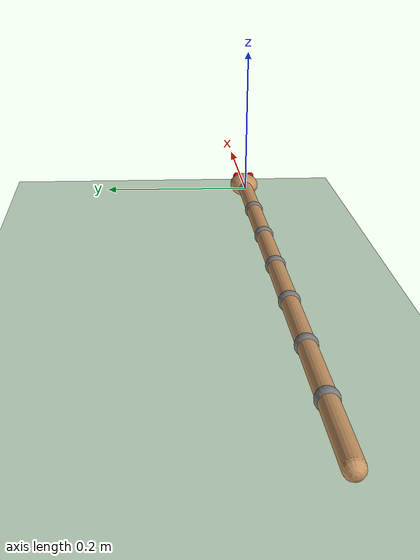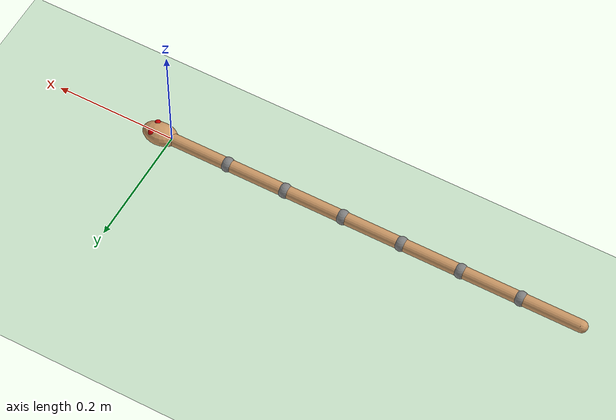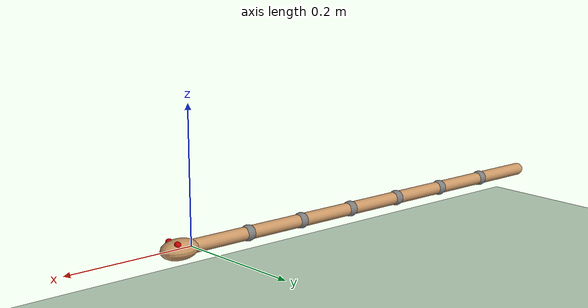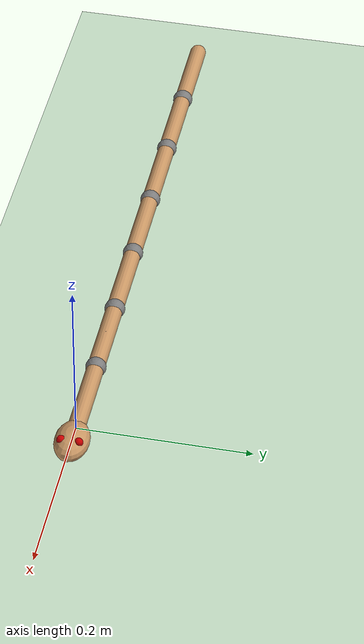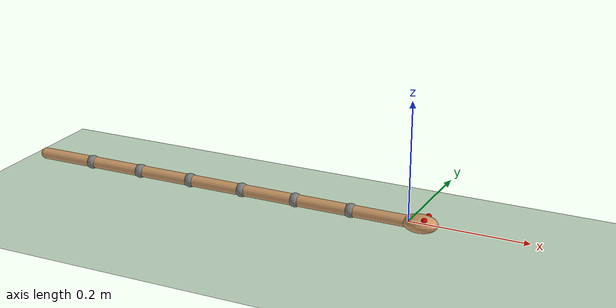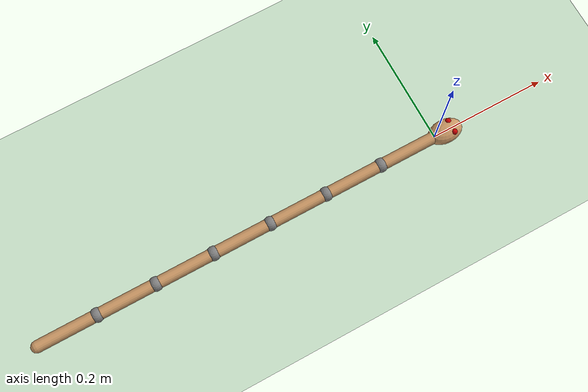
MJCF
<mujoco model="swimmer_position">
    <compiler angle="degree" coordinate="local" inertiafromgeom="true"/>
    <!--    water   -->
    <option collision="predefined" density="1000" timestep="0.01" viscosity="0.0009"/>
    <!--    oil                                                 absolute/dynamic   -->
    <!--    ethanol   -->
    <visual>
        <quality shadowsize="0"/>
    </visual>
    <default>
        <geom conaffinity="1" condim="1" contype="1" material="geom" rgba="0.8 0.6 .4 1"/>
        <default class="mid">
            <site pos="-0.05 0 0" size="0.01"/>
        </default>
        <default class="joint_mark">
            <site pos="0 0 0" size="0.012"/>
        </default>
        <default class="j">
            <joint axis="0 0 1" limited="true" pos="0 0 0" range="-90 90" type="hinge" armature='0.01' damping="0.01" stiffness="0"/>
        </default>
        <default class="g">
            <geom density="1000" fromto="0 0 0 -0.1 0 0" size="0.01" type="capsule"/>
        </default>
    </default>
    <asset>
        <texture builtin="gradient" height="100" rgb1="1 1 1" rgb2="0 0 0" type="skybox" width="100"/>
        <texture builtin="flat" height="1278" mark="cross" markrgb="1 1 1" name="texgeom" random="0.01"
                 rgb1="0.8 0.6 0.4" rgb2="0.8 0.6 0.4" type="cube" width="127"/>
<!--      backgroud  color-->
        <texture builtin="checker" height="100" name="texplane" rgb1="1 1 1" rgb2="1 1 1" type="2d" width="100"/>
        <material name="MatPlane" reflectance="0.5" shininess="1" specular="1" texrepeat="50 50" texture="texplane"/>
        <material name="geom" texture="texgeom" texuniform="true"/>
    </asset>
    <worldbody>
        <light cutoff="100" diffuse="1 1 1" dir="-0 0 -1.3" directional="true" exponent="1" pos="0 0 1.3"
               specular=".1 .1 .1"/>
        <geom conaffinity="1" condim="3" material="MatPlane" name="floor" pos="0 0 -0.1" rgba="0.8 0.9 0.8 1"
              size="5 5 0.01" type="plane"/>
        <!--  ================= SWIMMER ================= /-->

        <body name="torso" pos="0 0 0">
            <camera name="track" mode="trackcom" pos="-0.3 -1.5 1.5" xyaxes="1 0 0 0 1 1"/>
            <geom name="head" type="ellipsoid" size=".03 .02 .015" pos="0.02 0 0" mass="0" axisangle="30 30 30 0"/>
            <geom name="eyes1" type="capsule" fromto="0.03 0.01 0 0.03 0.01 0.01" size=".005" rgba="0.8 0 0 1"/>
            <geom name="eyes2" type="capsule" fromto="0.03 -0.01 0 0.03 -0.01 0.01" size=".005" rgba="0.8 0 0 1"/>
            <geom class="g"/>
            <joint axis="1 0 0" name="slider1" pos="0 0 0" type="slide" armature='0' stiffness="0" damping="0"/>
            <joint axis="0 1 0" name="slider2" pos="0 0 0" type="slide" armature='0' stiffness="0" damping="0"/>
            <joint axis="0 0 1" name="rot" pos="0 0 0" type="hinge" armature='0' stiffness="0" damping="0"/>
            <site name="head" class="mid"/>
            <site name="p1" pos="0 0 0" size="0.001"/>
            <body name="body1" pos="-.1 0 0">
                <geom class="g"/>
                <joint class="j" name="rot1"/>
                <site name="site1" class="mid"/>
                <site name="p2" class="joint_mark"/>
                <body name="body2" pos="-.1 0 0">
                    <geom class="g"/>
                    <joint class="j" name="rot2"/>
                    <site name="site2" class="mid"/>
                    <site class="joint_mark"/>
                    <body name="body3" pos="-.1 0 0">
                        <geom class="g"/>
                        <joint class="j" name="rot3"/>
                        <site name="site3" class="mid"/>
                        <site class="joint_mark"/>
                        <body name="body4" pos="-.1 0 0">
                            <geom class="g"/>
                            <joint class="j" name="rot4"/>
                            <site name="site4" class="mid"/>
                            <site class="joint_mark"/>
                            <body name="body5" pos="-.1 0 0">
                                <geom class="g"/>
                                <joint class="j" name="rot5"/>
                                <site name="site5" class="mid"/>
                                <site class="joint_mark"/>
                                <body name="body6" pos="-.1 0 0">
                                    <geom class="g"/>
                                    <joint class="j" name="rot6"/>
                                    <site name="site6" class="mid"/>
                                    <site name="p3" class="joint_mark"/>
                                    <site name="p4" pos="-0.1 0 0" size="0.001"/>
                                </body>
                            </body>
                        </body>
                    </body>
                </body>
            </body>
        </body>
    </worldbody>

    <sensor>
        <gyro name="gyro1" site="site1"/>
        <gyro name="gyro2" site="site2"/>
        <gyro name="gyro3" site="site3"/>
        <gyro name="gyro4" site="site4"/>
        <gyro name="gyro5" site="site5"/>
        <gyro name="gyro6" site="site6"/>

        <framepos objtype="site" objname="head"/>
        <framepos objtype="site" objname="site1"/>
        <framepos objtype="site" objname="site2"/>
        <framepos objtype="site" objname="site3"/>
        <framepos objtype="site" objname="site4"/>
        <framepos objtype="site" objname="site5"/>
        <framepos objtype="site" objname="site6"/>
        <framepos objtype="site" objname="p1"/>
        <framepos objtype="site" objname="p2"/>
        <framepos objtype="site" objname="p3"/>
        <framepos objtype="site" objname="p4"/>

    </sensor>

    <actuator>
        <position ctrllimited="true" ctrlrange="-1 1" forcelimited="true" forcerange="-0.1 0.1" kp="0.1" gear="1" joint="rot1"/>
        <position ctrllimited="true" ctrlrange="-1 1" forcelimited="true" forcerange="-0.1 0.1" kp="0.1" gear="1" joint="rot2"/>
        <position ctrllimited="true" ctrlrange="-1 1" forcelimited="true" forcerange="-0.1 0.1" kp="0.1" gear="1" joint="rot3"/>
        <position ctrllimited="true" ctrlrange="-1 1" forcelimited="true" forcerange="-0.1 0.1" kp="0.1" gear="1" joint="rot4"/>
        <position ctrllimited="true" ctrlrange="-1 1" forcelimited="true" forcerange="-0.1 0.1" kp="0.1" gear="1" joint="rot5"/>
        <position ctrllimited="true" ctrlrange="-1 1" forcelimited="true" forcerange="-0.1 0.1" kp="0.1" gear="1" joint="rot6"/>
    </actuator>
</mujoco>
